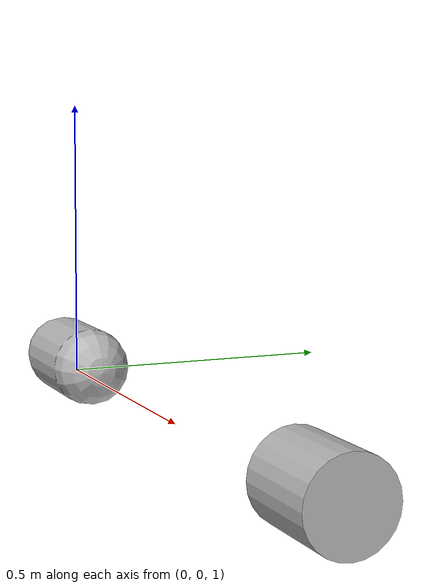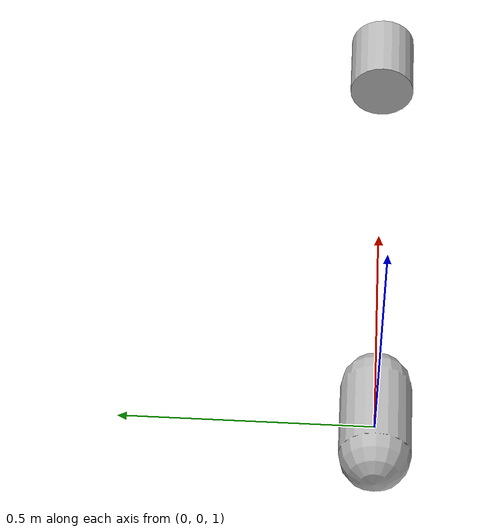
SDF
<?xml version='1.0' ?>
<!-- Humanoid model
Toyota Research Institute-->
<sdf version='1.6'>
  <model name='capsule_v1'>
    <pose>0.0 0.0 0 0 0 0</pose>

    <link name='waist'>
      <pose>0 0 1.02 0 0 0</pose>
      <inertial>
        <mass>12</mass>
        <pose>0 0 0 0 0 0</pose>
      </inertial>
      <visual name="cap_waist">
        <pose>0 0 0 0 1.5708 0</pose>
        <geometry>
          <capsule>
            <radius>0.07</radius>
            <length>0.16</length>
          </capsule>
        </geometry>
        <material>
          <specular>1 1 0.1 1</specular>
        </material>
      </visual>
    </link>

    <link name='waist2'>
      <pose>1 0 1.02 0 0 0</pose>
      <inertial>
        <mass>12</mass>
        <pose>0 0 0 0 0 0</pose>
      </inertial>
      <visual name="cap_waist">
        <pose>0 0 0 0 1.5708 0</pose>
        <geometry>
          <cylinder>
            <radius>0.07</radius>
            <length>0.16</length>
          </cylinder>
        </geometry>
        <material>
          <specular>1 1 0.1 1</specular>
        </material>
      </visual>
    </link>

  </model>
</sdf>
